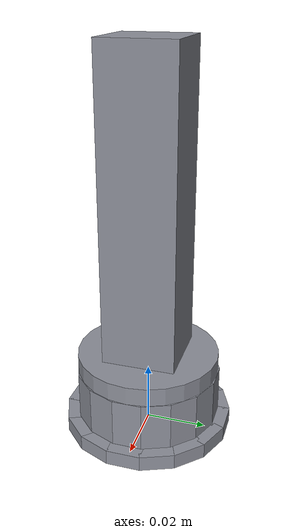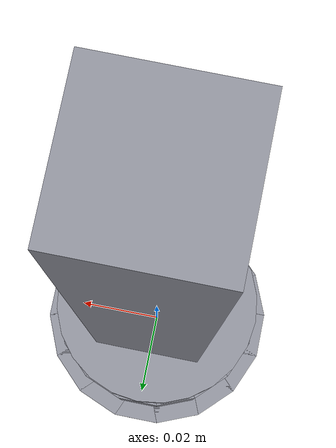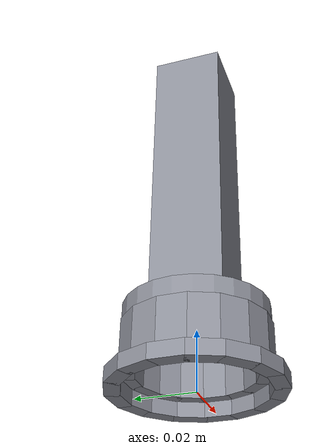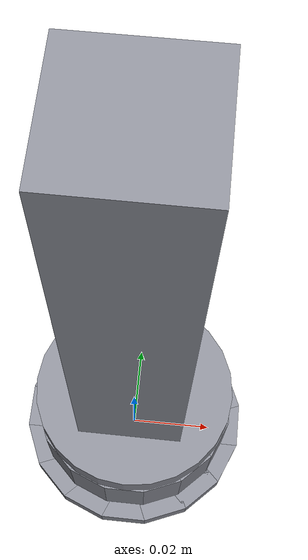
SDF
<?xml version="1.0" ?>
<!-- GENERATED by ros2_ws/src/bartender_gazebo/scripts/make_beer_and_opener.py.
     Edit that script and re-run it; edits here are overwritten. -->
<sdf version="1.9">
  <model name="bottle_opener">
    <link name="opener_link">
      <inertial>
        <pose>0 0 0.063500 0 0 0</pose>
        <mass>0.12</mass>
        <inertia>
          <ixx>0.00016705</ixx>
          <iyy>0.00016705</iyy>
          <izz>0.00001152</izz>
          <ixy>0</ixy><ixz>0</ixz><iyz>0</iyz>
        </inertia>
      </inertial>

      <visual name="bell_0">
        <pose>0.025100 0.000000 0.002500 0 0 0.000000</pose>
        <geometry><box><size>0.005000 0.010980 0.005000</size></box></geometry>
        <material>
          <ambient>0.14 0.14 0.15 1</ambient>
          <diffuse>0.55 0.56 0.60 1</diffuse>
          <specular>0.9 0.9 0.9 1</specular>
        </material>
      </visual>
      <collision name="bell_collision_0">
        <pose>0.025100 0.000000 0.002500 0 0 0.000000</pose>
        <geometry><box><size>0.005000 0.010980 0.005000</size></box></geometry>
        <surface><friction><ode><mu>0.8</mu><mu2>0.8</mu2></ode></friction></surface>
      </collision>
      <visual name="bell_1">
        <pose>0.023189 0.009605 0.002500 0 0 0.392699</pose>
        <geometry><box><size>0.005000 0.010980 0.005000</size></box></geometry>
        <material>
          <ambient>0.14 0.14 0.15 1</ambient>
          <diffuse>0.55 0.56 0.60 1</diffuse>
          <specular>0.9 0.9 0.9 1</specular>
        </material>
      </visual>
      <collision name="bell_collision_1">
        <pose>0.023189 0.009605 0.002500 0 0 0.392699</pose>
        <geometry><box><size>0.005000 0.010980 0.005000</size></box></geometry>
        <surface><friction><ode><mu>0.8</mu><mu2>0.8</mu2></ode></friction></surface>
      </collision>
      <visual name="bell_2">
        <pose>0.017748 0.017748 0.002500 0 0 0.785398</pose>
        <geometry><box><size>0.005000 0.010980 0.005000</size></box></geometry>
        <material>
          <ambient>0.14 0.14 0.15 1</ambient>
          <diffuse>0.55 0.56 0.60 1</diffuse>
          <specular>0.9 0.9 0.9 1</specular>
        </material>
      </visual>
      <collision name="bell_collision_2">
        <pose>0.017748 0.017748 0.002500 0 0 0.785398</pose>
        <geometry><box><size>0.005000 0.010980 0.005000</size></box></geometry>
        <surface><friction><ode><mu>0.8</mu><mu2>0.8</mu2></ode></friction></surface>
      </collision>
      <visual name="bell_3">
        <pose>0.009605 0.023189 0.002500 0 0 1.178097</pose>
        <geometry><box><size>0.005000 0.010980 0.005000</size></box></geometry>
        <material>
          <ambient>0.14 0.14 0.15 1</ambient>
          <diffuse>0.55 0.56 0.60 1</diffuse>
          <specular>0.9 0.9 0.9 1</specular>
        </material>
      </visual>
      <collision name="bell_collision_3">
        <pose>0.009605 0.023189 0.002500 0 0 1.178097</pose>
        <geometry><box><size>0.005000 0.010980 0.005000</size></box></geometry>
        <surface><friction><ode><mu>0.8</mu><mu2>0.8</mu2></ode></friction></surface>
      </collision>
      <visual name="bell_4">
        <pose>0.000000 0.025100 0.002500 0 0 1.570796</pose>
        <geometry><box><size>0.005000 0.010980 0.005000</size></box></geometry>
        <material>
          <ambient>0.14 0.14 0.15 1</ambient>
          <diffuse>0.55 0.56 0.60 1</diffuse>
          <specular>0.9 0.9 0.9 1</specular>
        </material>
      </visual>
      <collision name="bell_collision_4">
        <pose>0.000000 0.025100 0.002500 0 0 1.570796</pose>
        <geometry><box><size>0.005000 0.010980 0.005000</size></box></geometry>
        <surface><friction><ode><mu>0.8</mu><mu2>0.8</mu2></ode></friction></surface>
      </collision>
      <visual name="bell_5">
        <pose>-0.009605 0.023189 0.002500 0 0 1.963495</pose>
        <geometry><box><size>0.005000 0.010980 0.005000</size></box></geometry>
        <material>
          <ambient>0.14 0.14 0.15 1</ambient>
          <diffuse>0.55 0.56 0.60 1</diffuse>
          <specular>0.9 0.9 0.9 1</specular>
        </material>
      </visual>
      <collision name="bell_collision_5">
        <pose>-0.009605 0.023189 0.002500 0 0 1.963495</pose>
        <geometry><box><size>0.005000 0.010980 0.005000</size></box></geometry>
        <surface><friction><ode><mu>0.8</mu><mu2>0.8</mu2></ode></friction></surface>
      </collision>
      <visual name="bell_6">
        <pose>-0.017748 0.017748 0.002500 0 0 2.356194</pose>
        <geometry><box><size>0.005000 0.010980 0.005000</size></box></geometry>
        <material>
          <ambient>0.14 0.14 0.15 1</ambient>
          <diffuse>0.55 0.56 0.60 1</diffuse>
          <specular>0.9 0.9 0.9 1</specular>
        </material>
      </visual>
      <collision name="bell_collision_6">
        <pose>-0.017748 0.017748 0.002500 0 0 2.356194</pose>
        <geometry><box><size>0.005000 0.010980 0.005000</size></box></geometry>
        <surface><friction><ode><mu>0.8</mu><mu2>0.8</mu2></ode></friction></surface>
      </collision>
      <visual name="bell_7">
        <pose>-0.023189 0.009605 0.002500 0 0 2.748894</pose>
        <geometry><box><size>0.005000 0.010980 0.005000</size></box></geometry>
        <material>
          <ambient>0.14 0.14 0.15 1</ambient>
          <diffuse>0.55 0.56 0.60 1</diffuse>
          <specular>0.9 0.9 0.9 1</specular>
        </material>
      </visual>
      <collision name="bell_collision_7">
        <pose>-0.023189 0.009605 0.002500 0 0 2.748894</pose>
        <geometry><box><size>0.005000 0.010980 0.005000</size></box></geometry>
        <surface><friction><ode><mu>0.8</mu><mu2>0.8</mu2></ode></friction></surface>
      </collision>
      <visual name="bell_8">
        <pose>-0.025100 0.000000 0.002500 0 0 3.141593</pose>
        <geometry><box><size>0.005000 0.010980 0.005000</size></box></geometry>
        <material>
          <ambient>0.14 0.14 0.15 1</ambient>
          <diffuse>0.55 0.56 0.60 1</diffuse>
          <specular>0.9 0.9 0.9 1</specular>
        </material>
      </visual>
      <collision name="bell_collision_8">
        <pose>-0.025100 0.000000 0.002500 0 0 3.141593</pose>
        <geometry><box><size>0.005000 0.010980 0.005000</size></box></geometry>
        <surface><friction><ode><mu>0.8</mu><mu2>0.8</mu2></ode></friction></surface>
      </collision>
      <visual name="bell_9">
        <pose>-0.023189 -0.009605 0.002500 0 0 3.534292</pose>
        <geometry><box><size>0.005000 0.010980 0.005000</size></box></geometry>
        <material>
          <ambient>0.14 0.14 0.15 1</ambient>
          <diffuse>0.55 0.56 0.60 1</diffuse>
          <specular>0.9 0.9 0.9 1</specular>
        </material>
      </visual>
      <collision name="bell_collision_9">
        <pose>-0.023189 -0.009605 0.002500 0 0 3.534292</pose>
        <geometry><box><size>0.005000 0.010980 0.005000</size></box></geometry>
        <surface><friction><ode><mu>0.8</mu><mu2>0.8</mu2></ode></friction></surface>
      </collision>
      <visual name="bell_10">
        <pose>-0.017748 -0.017748 0.002500 0 0 3.926991</pose>
        <geometry><box><size>0.005000 0.010980 0.005000</size></box></geometry>
        <material>
          <ambient>0.14 0.14 0.15 1</ambient>
          <diffuse>0.55 0.56 0.60 1</diffuse>
          <specular>0.9 0.9 0.9 1</specular>
        </material>
      </visual>
      <collision name="bell_collision_10">
        <pose>-0.017748 -0.017748 0.002500 0 0 3.926991</pose>
        <geometry><box><size>0.005000 0.010980 0.005000</size></box></geometry>
        <surface><friction><ode><mu>0.8</mu><mu2>0.8</mu2></ode></friction></surface>
      </collision>
      <visual name="bell_11">
        <pose>-0.009605 -0.023189 0.002500 0 0 4.319690</pose>
        <geometry><box><size>0.005000 0.010980 0.005000</size></box></geometry>
        <material>
          <ambient>0.14 0.14 0.15 1</ambient>
          <diffuse>0.55 0.56 0.60 1</diffuse>
          <specular>0.9 0.9 0.9 1</specular>
        </material>
      </visual>
      <collision name="bell_collision_11">
        <pose>-0.009605 -0.023189 0.002500 0 0 4.319690</pose>
        <geometry><box><size>0.005000 0.010980 0.005000</size></box></geometry>
        <surface><friction><ode><mu>0.8</mu><mu2>0.8</mu2></ode></friction></surface>
      </collision>
      <visual name="bell_12">
        <pose>-0.000000 -0.025100 0.002500 0 0 4.712389</pose>
        <geometry><box><size>0.005000 0.010980 0.005000</size></box></geometry>
        <material>
          <ambient>0.14 0.14 0.15 1</ambient>
          <diffuse>0.55 0.56 0.60 1</diffuse>
          <specular>0.9 0.9 0.9 1</specular>
        </material>
      </visual>
      <collision name="bell_collision_12">
        <pose>-0.000000 -0.025100 0.002500 0 0 4.712389</pose>
        <geometry><box><size>0.005000 0.010980 0.005000</size></box></geometry>
        <surface><friction><ode><mu>0.8</mu><mu2>0.8</mu2></ode></friction></surface>
      </collision>
      <visual name="bell_13">
        <pose>0.009605 -0.023189 0.002500 0 0 5.105088</pose>
        <geometry><box><size>0.005000 0.010980 0.005000</size></box></geometry>
        <material>
          <ambient>0.14 0.14 0.15 1</ambient>
          <diffuse>0.55 0.56 0.60 1</diffuse>
          <specular>0.9 0.9 0.9 1</specular>
        </material>
      </visual>
      <collision name="bell_collision_13">
        <pose>0.009605 -0.023189 0.002500 0 0 5.105088</pose>
        <geometry><box><size>0.005000 0.010980 0.005000</size></box></geometry>
        <surface><friction><ode><mu>0.8</mu><mu2>0.8</mu2></ode></friction></surface>
      </collision>
      <visual name="bell_14">
        <pose>0.017748 -0.017748 0.002500 0 0 5.497787</pose>
        <geometry><box><size>0.005000 0.010980 0.005000</size></box></geometry>
        <material>
          <ambient>0.14 0.14 0.15 1</ambient>
          <diffuse>0.55 0.56 0.60 1</diffuse>
          <specular>0.9 0.9 0.9 1</specular>
        </material>
      </visual>
      <collision name="bell_collision_14">
        <pose>0.017748 -0.017748 0.002500 0 0 5.497787</pose>
        <geometry><box><size>0.005000 0.010980 0.005000</size></box></geometry>
        <surface><friction><ode><mu>0.8</mu><mu2>0.8</mu2></ode></friction></surface>
      </collision>
      <visual name="bell_15">
        <pose>0.023189 -0.009605 0.002500 0 0 5.890486</pose>
        <geometry><box><size>0.005000 0.010980 0.005000</size></box></geometry>
        <material>
          <ambient>0.14 0.14 0.15 1</ambient>
          <diffuse>0.55 0.56 0.60 1</diffuse>
          <specular>0.9 0.9 0.9 1</specular>
        </material>
      </visual>
      <collision name="bell_collision_15">
        <pose>0.023189 -0.009605 0.002500 0 0 5.890486</pose>
        <geometry><box><size>0.005000 0.010980 0.005000</size></box></geometry>
        <surface><friction><ode><mu>0.8</mu><mu2>0.8</mu2></ode></friction></surface>
      </collision>
      <visual name="bell_16">
        <pose>0.021100 0.000000 0.013000 0 0 0.000000</pose>
        <geometry><box><size>0.005000 0.009389 0.016000</size></box></geometry>
        <material>
          <ambient>0.14 0.14 0.15 1</ambient>
          <diffuse>0.55 0.56 0.60 1</diffuse>
          <specular>0.9 0.9 0.9 1</specular>
        </material>
      </visual>
      <collision name="bell_collision_16">
        <pose>0.021100 0.000000 0.013000 0 0 0.000000</pose>
        <geometry><box><size>0.005000 0.009389 0.016000</size></box></geometry>
        <surface><friction><ode><mu>0.8</mu><mu2>0.8</mu2></ode></friction></surface>
      </collision>
      <visual name="bell_17">
        <pose>0.019494 0.008075 0.013000 0 0 0.392699</pose>
        <geometry><box><size>0.005000 0.009389 0.016000</size></box></geometry>
        <material>
          <ambient>0.14 0.14 0.15 1</ambient>
          <diffuse>0.55 0.56 0.60 1</diffuse>
          <specular>0.9 0.9 0.9 1</specular>
        </material>
      </visual>
      <collision name="bell_collision_17">
        <pose>0.019494 0.008075 0.013000 0 0 0.392699</pose>
        <geometry><box><size>0.005000 0.009389 0.016000</size></box></geometry>
        <surface><friction><ode><mu>0.8</mu><mu2>0.8</mu2></ode></friction></surface>
      </collision>
      <visual name="bell_18">
        <pose>0.014920 0.014920 0.013000 0 0 0.785398</pose>
        <geometry><box><size>0.005000 0.009389 0.016000</size></box></geometry>
        <material>
          <ambient>0.14 0.14 0.15 1</ambient>
          <diffuse>0.55 0.56 0.60 1</diffuse>
          <specular>0.9 0.9 0.9 1</specular>
        </material>
      </visual>
      <collision name="bell_collision_18">
        <pose>0.014920 0.014920 0.013000 0 0 0.785398</pose>
        <geometry><box><size>0.005000 0.009389 0.016000</size></box></geometry>
        <surface><friction><ode><mu>0.8</mu><mu2>0.8</mu2></ode></friction></surface>
      </collision>
      <visual name="bell_19">
        <pose>0.008075 0.019494 0.013000 0 0 1.178097</pose>
        <geometry><box><size>0.005000 0.009389 0.016000</size></box></geometry>
        <material>
          <ambient>0.14 0.14 0.15 1</ambient>
          <diffuse>0.55 0.56 0.60 1</diffuse>
          <specular>0.9 0.9 0.9 1</specular>
        </material>
      </visual>
      <collision name="bell_collision_19">
        <pose>0.008075 0.019494 0.013000 0 0 1.178097</pose>
        <geometry><box><size>0.005000 0.009389 0.016000</size></box></geometry>
        <surface><friction><ode><mu>0.8</mu><mu2>0.8</mu2></ode></friction></surface>
      </collision>
      <visual name="bell_20">
        <pose>0.000000 0.021100 0.013000 0 0 1.570796</pose>
        <geometry><box><size>0.005000 0.009389 0.016000</size></box></geometry>
        <material>
          <ambient>0.14 0.14 0.15 1</ambient>
          <diffuse>0.55 0.56 0.60 1</diffuse>
          <specular>0.9 0.9 0.9 1</specular>
        </material>
      </visual>
      <collision name="bell_collision_20">
        <pose>0.000000 0.021100 0.013000 0 0 1.570796</pose>
        <geometry><box><size>0.005000 0.009389 0.016000</size></box></geometry>
        <surface><friction><ode><mu>0.8</mu><mu2>0.8</mu2></ode></friction></surface>
      </collision>
      <visual name="bell_21">
        <pose>-0.008075 0.019494 0.013000 0 0 1.963495</pose>
        <geometry><box><size>0.005000 0.009389 0.016000</size></box></geometry>
        <material>
          <ambient>0.14 0.14 0.15 1</ambient>
          <diffuse>0.55 0.56 0.60 1</diffuse>
          <specular>0.9 0.9 0.9 1</specular>
        </material>
      </visual>
      <collision name="bell_collision_21">
        <pose>-0.008075 0.019494 0.013000 0 0 1.963495</pose>
        <geometry><box><size>0.005000 0.009389 0.016000</size></box></geometry>
        <surface><friction><ode><mu>0.8</mu><mu2>0.8</mu2></ode></friction></surface>
      </collision>
      <visual name="bell_22">
        <pose>-0.014920 0.014920 0.013000 0 0 2.356194</pose>
        <geometry><box><size>0.005000 0.009389 0.016000</size></box></geometry>
        <material>
          <ambient>0.14 0.14 0.15 1</ambient>
          <diffuse>0.55 0.56 0.60 1</diffuse>
          <specular>0.9 0.9 0.9 1</specular>
        </material>
      </visual>
      <collision name="bell_collision_22">
        <pose>-0.014920 0.014920 0.013000 0 0 2.356194</pose>
        <geometry><box><size>0.005000 0.009389 0.016000</size></box></geometry>
        <surface><friction><ode><mu>0.8</mu><mu2>0.8</mu2></ode></friction></surface>
      </collision>
      <visual name="bell_23">
        <pose>-0.019494 0.008075 0.013000 0 0 2.748894</pose>
        <geometry><box><size>0.005000 0.009389 0.016000</size></box></geometry>
        <material>
          <ambient>0.14 0.14 0.15 1</ambient>
          <diffuse>0.55 0.56 0.60 1</diffuse>
          <specular>0.9 0.9 0.9 1</specular>
        </material>
      </visual>
      <collision name="bell_collision_23">
        <pose>-0.019494 0.008075 0.013000 0 0 2.748894</pose>
        <geometry><box><size>0.005000 0.009389 0.016000</size></box></geometry>
        <surface><friction><ode><mu>0.8</mu><mu2>0.8</mu2></ode></friction></surface>
      </collision>
      <visual name="bell_24">
        <pose>-0.021100 0.000000 0.013000 0 0 3.141593</pose>
        <geometry><box><size>0.005000 0.009389 0.016000</size></box></geometry>
        <material>
          <ambient>0.14 0.14 0.15 1</ambient>
          <diffuse>0.55 0.56 0.60 1</diffuse>
          <specular>0.9 0.9 0.9 1</specular>
        </material>
      </visual>
      <collision name="bell_collision_24">
        <pose>-0.021100 0.000000 0.013000 0 0 3.141593</pose>
        <geometry><box><size>0.005000 0.009389 0.016000</size></box></geometry>
        <surface><friction><ode><mu>0.8</mu><mu2>0.8</mu2></ode></friction></surface>
      </collision>
      <visual name="bell_25">
        <pose>-0.019494 -0.008075 0.013000 0 0 3.534292</pose>
        <geometry><box><size>0.005000 0.009389 0.016000</size></box></geometry>
        <material>
          <ambient>0.14 0.14 0.15 1</ambient>
          <diffuse>0.55 0.56 0.60 1</diffuse>
          <specular>0.9 0.9 0.9 1</specular>
        </material>
      </visual>
      <collision name="bell_collision_25">
        <pose>-0.019494 -0.008075 0.013000 0 0 3.534292</pose>
        <geometry><box><size>0.005000 0.009389 0.016000</size></box></geometry>
        <surface><friction><ode><mu>0.8</mu><mu2>0.8</mu2></ode></friction></surface>
      </collision>
      <visual name="bell_26">
        <pose>-0.014920 -0.014920 0.013000 0 0 3.926991</pose>
        <geometry><box><size>0.005000 0.009389 0.016000</size></box></geometry>
        <material>
          <ambient>0.14 0.14 0.15 1</ambient>
          <diffuse>0.55 0.56 0.60 1</diffuse>
          <specular>0.9 0.9 0.9 1</specular>
        </material>
      </visual>
      <collision name="bell_collision_26">
        <pose>-0.014920 -0.014920 0.013000 0 0 3.926991</pose>
        <geometry><box><size>0.005000 0.009389 0.016000</size></box></geometry>
        <surface><friction><ode><mu>0.8</mu><mu2>0.8</mu2></ode></friction></surface>
      </collision>
      <visual name="bell_27">
        <pose>-0.008075 -0.019494 0.013000 0 0 4.319690</pose>
        <geometry><box><size>0.005000 0.009389 0.016000</size></box></geometry>
        <material>
          <ambient>0.14 0.14 0.15 1</ambient>
          <diffuse>0.55 0.56 0.60 1</diffuse>
          <specular>0.9 0.9 0.9 1</specular>
        </material>
      </visual>
      <collision name="bell_collision_27">
        <pose>-0.008075 -0.019494 0.013000 0 0 4.319690</pose>
        <geometry><box><size>0.005000 0.009389 0.016000</size></box></geometry>
        <surface><friction><ode><mu>0.8</mu><mu2>0.8</mu2></ode></friction></surface>
      </collision>
      <visual name="bell_28">
        <pose>-0.000000 -0.021100 0.013000 0 0 4.712389</pose>
        <geometry><box><size>0.005000 0.009389 0.016000</size></box></geometry>
        <material>
          <ambient>0.14 0.14 0.15 1</ambient>
          <diffuse>0.55 0.56 0.60 1</diffuse>
          <specular>0.9 0.9 0.9 1</specular>
        </material>
      </visual>
      <collision name="bell_collision_28">
        <pose>-0.000000 -0.021100 0.013000 0 0 4.712389</pose>
        <geometry><box><size>0.005000 0.009389 0.016000</size></box></geometry>
        <surface><friction><ode><mu>0.8</mu><mu2>0.8</mu2></ode></friction></surface>
      </collision>
      <visual name="bell_29">
        <pose>0.008075 -0.019494 0.013000 0 0 5.105088</pose>
        <geometry><box><size>0.005000 0.009389 0.016000</size></box></geometry>
        <material>
          <ambient>0.14 0.14 0.15 1</ambient>
          <diffuse>0.55 0.56 0.60 1</diffuse>
          <specular>0.9 0.9 0.9 1</specular>
        </material>
      </visual>
      <collision name="bell_collision_29">
        <pose>0.008075 -0.019494 0.013000 0 0 5.105088</pose>
        <geometry><box><size>0.005000 0.009389 0.016000</size></box></geometry>
        <surface><friction><ode><mu>0.8</mu><mu2>0.8</mu2></ode></friction></surface>
      </collision>
      <visual name="bell_30">
        <pose>0.014920 -0.014920 0.013000 0 0 5.497787</pose>
        <geometry><box><size>0.005000 0.009389 0.016000</size></box></geometry>
        <material>
          <ambient>0.14 0.14 0.15 1</ambient>
          <diffuse>0.55 0.56 0.60 1</diffuse>
          <specular>0.9 0.9 0.9 1</specular>
        </material>
      </visual>
      <collision name="bell_collision_30">
        <pose>0.014920 -0.014920 0.013000 0 0 5.497787</pose>
        <geometry><box><size>0.005000 0.009389 0.016000</size></box></geometry>
        <surface><friction><ode><mu>0.8</mu><mu2>0.8</mu2></ode></friction></surface>
      </collision>
      <visual name="bell_31">
        <pose>0.019494 -0.008075 0.013000 0 0 5.890486</pose>
        <geometry><box><size>0.005000 0.009389 0.016000</size></box></geometry>
        <material>
          <ambient>0.14 0.14 0.15 1</ambient>
          <diffuse>0.55 0.56 0.60 1</diffuse>
          <specular>0.9 0.9 0.9 1</specular>
        </material>
      </visual>
      <collision name="bell_collision_31">
        <pose>0.019494 -0.008075 0.013000 0 0 5.890486</pose>
        <geometry><box><size>0.005000 0.009389 0.016000</size></box></geometry>
        <surface><friction><ode><mu>0.8</mu><mu2>0.8</mu2></ode></friction></surface>
      </collision>

      <visual name="crown_plate">
        <pose>0 0 0.024000 0 0 0</pose>
        <geometry><cylinder><radius>0.023600</radius>
          <length>0.006000</length></cylinder></geometry>
        <material>
          <ambient>0.14 0.14 0.15 1</ambient>
          <diffuse>0.55 0.56 0.60 1</diffuse>
          <specular>0.9 0.9 0.9 1</specular>
        </material>
      </visual>

      <collision name="crown_plate_collision">
        <pose>0 0 0.024000 0 0 0</pose>
        <geometry><cylinder><radius>0.023600</radius>
          <length>0.006000</length></cylinder></geometry>
        <surface><friction><ode><mu>0.8</mu><mu2>0.8</mu2></ode></friction></surface>
      </collision>

      <visual name="shaft">
        <pose>0 0 0.077000 0 0 0</pose>
        <geometry><box><size>0.024000 0.024000
          0.100000</size></box></geometry>
        <material>
          <ambient>0.14 0.14 0.15 1</ambient>
          <diffuse>0.55 0.56 0.60 1</diffuse>
          <specular>0.9 0.9 0.9 1</specular>
        </material>
      </visual>
      <collision name="shaft_collision">
        <pose>0 0 0.077000 0 0 0</pose>
        <geometry><box><size>0.024000 0.024000
          0.100000</size></box></geometry>
        <surface><friction><ode><mu>0.8</mu><mu2>0.8</mu2></ode></friction></surface>
      </collision>
    </link>
  </model>
</sdf>
